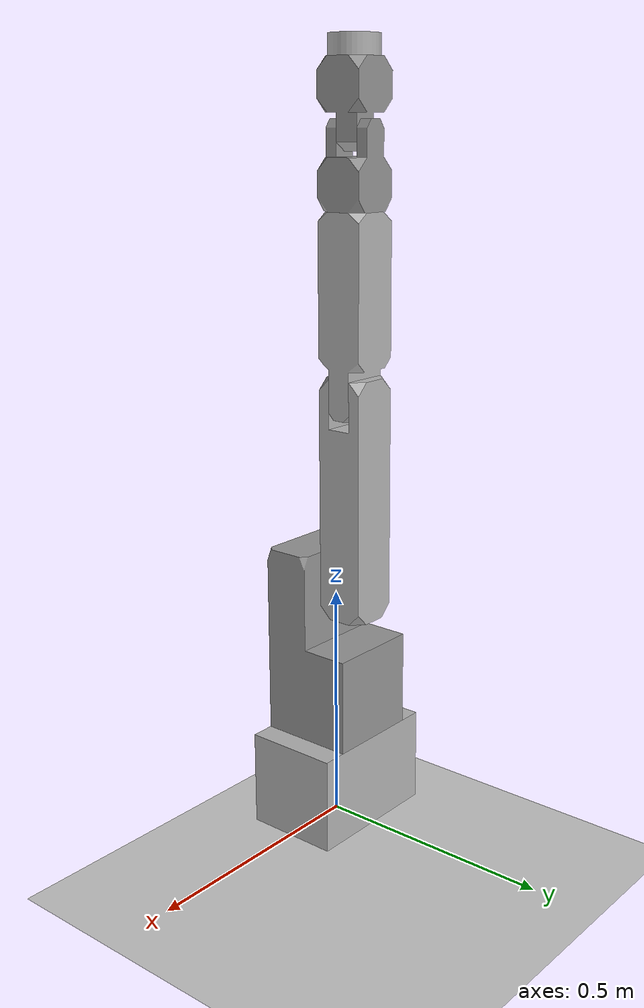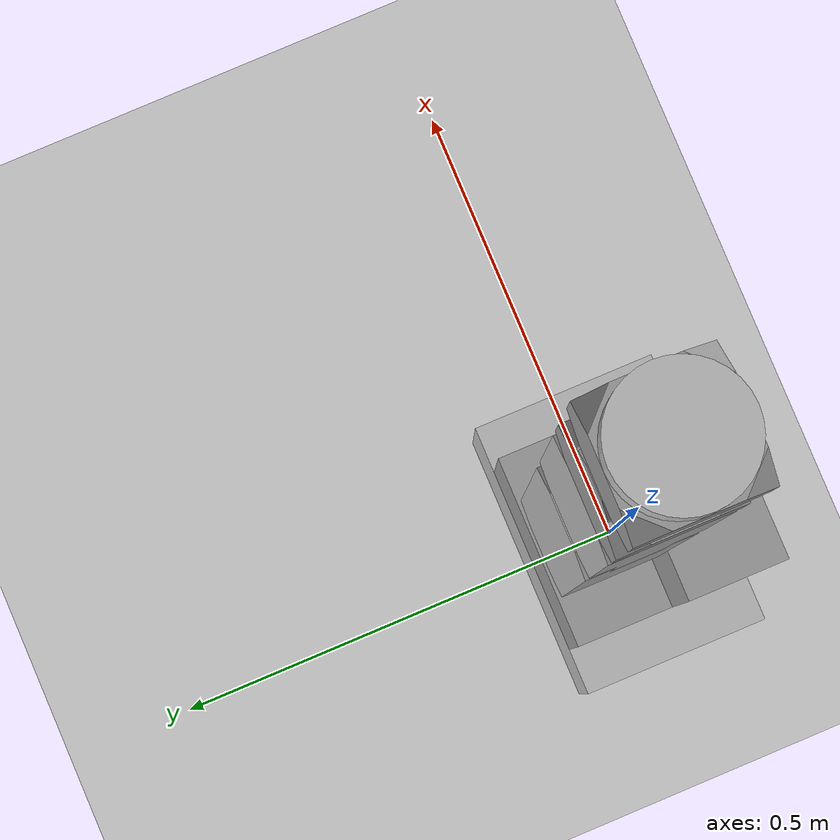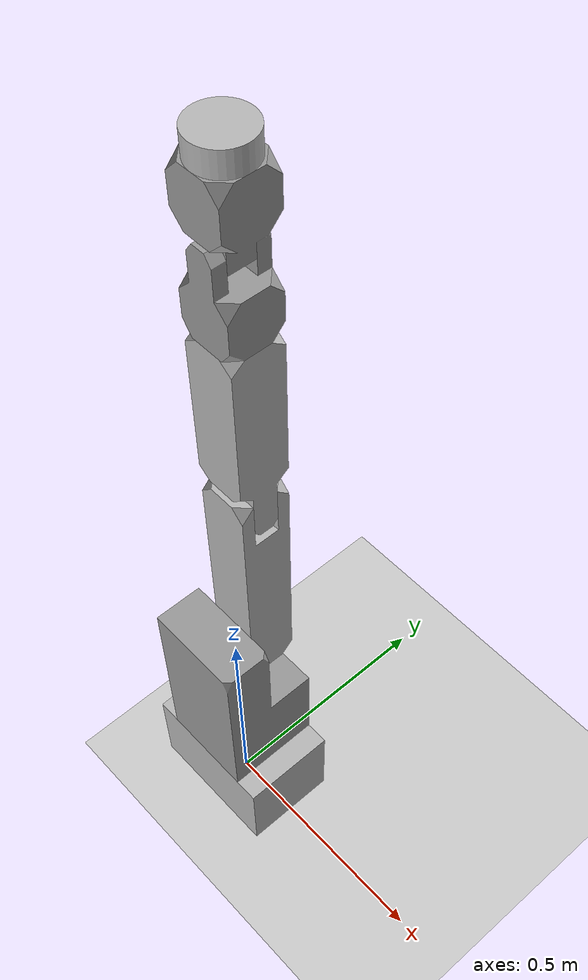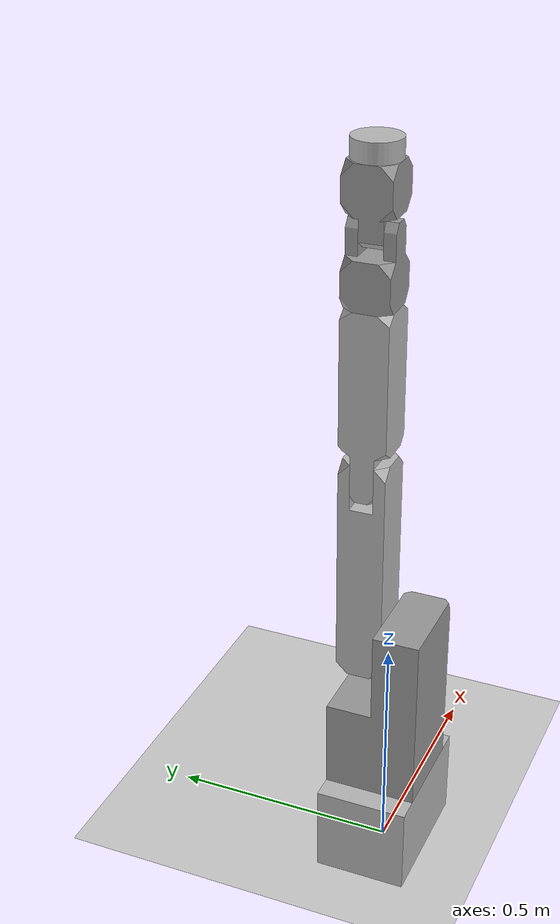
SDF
<?xml version="1.0" ?>
<sdf version="1.4">
	<world name="default">
		<include>
			<uri>model://ground_plane</uri>
		</include>

		<include>
			<uri>model://sun</uri>
		</include>

		<include>
			<uri>model://gz_mani</uri>
			<plugin name="gz_mani" filename="libgz_mani.so"/>
		</include>
	</world>
</sdf>

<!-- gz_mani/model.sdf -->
<!-- mesh -> pose -> joint -> collision -> joint.linit -->

<sdf version='1.5'>

	<model name="gz_mani">

		<link name='link0'>
			<inertial><mass>1000</mass></inertial>
			<pose>0 0 0.1 0 0 0</pose>

			<visual name='vis_link0'>
				<geometry>
					<mesh><uri>model://gz_mani/link0.dae</uri></mesh>
				</geometry>
			</visual>

			<collision name='col_link0'>
				<geometry>
					<box>
						<size>.2 .2 .1</size>
					</box>
				</geometry>
			</collision>
		</link>

		<link name="link1">
			<pose>0 0 0.3 0 0 0</pose>
			<self_collide>0</self_collide>

			<visual name="vis_link1">
				<geometry>
					<mesh><uri>model://gz_mani/link1.dae</uri></mesh>
				</geometry>
				<material>
					<script>
						<uri>file://media/materials/scripts/gazebo.material</uri>
						<name>Gazebo/Grey</name>
					</script>
				</material>
			</visual>

			<collision name="col_link1">
				<geometry>
					<box>
						<size>.0 .0 .0</size>
					</box>
				</geometry>
			</collision>

		</link>

		<link name="link2">
			<pose>0 0.05 0.66 0 0 0</pose>
			<self_collide>0</self_collide>

			<visual name="vis_link2">
				<geometry>
					<mesh><uri>model://gz_mani/link2.dae</uri></mesh>
				</geometry>
			</visual>

			<collision name="col_link2">
				<geometry>
					<box>
						<size>.0 .0 .0</size>
					</box>
				</geometry>
			</collision>
		</link>

		<link name="link3">
			<pose>0 0.05 1.13 0 0 0</pose>
			<self_collide>0</self_collide>

			<visual name="vis_link3">
				<geometry>
					<mesh><uri>model://gz_mani/link3.dae</uri></mesh>
				</geometry>
			</visual>

			<collision name="col_link3">
				<geometry>
					<box>
						<size>.0 .0 .0</size>
					</box>
				</geometry>
			</collision>
		</link>

		<link name="link4">
			<pose>0 0.05 1.33 0 0 0</pose>
			<self_collide>0</self_collide>

			<visual name="vis_link4">
				<geometry>
					<mesh><uri>model://gz_mani/link4.dae</uri></mesh>
				</geometry>
				<material>
					<script>
						<uri>file://media/materials/scripts/gazebo.material</uri>
						<name>Gazebo/Grey</name>
					</script>
				</material>
			</visual>

			<collision name="col_link4">
				<geometry>
					<box>
						<size>.0 .0 .0</size>
					</box>
				</geometry>
			</collision>
		</link>

		<link name="link5">
			<pose>0 0.05 1.51 0 0 0</pose>
			<self_collide>0</self_collide>

			<visual name="vis_link5">
				<geometry>
					<mesh><uri>model://gz_mani/link5.dae</uri></mesh>
				</geometry>
				<material>
					<script>
						<uri>file://media/materials/scripts/gazebo.material</uri>
						<name>Gazebo/Grey</name>
					</script>
				</material>
			</visual>

			<collision name="col_link5">
				<geometry>
					<box>
						<size>.0 .0 .0</size>
					</box>
				</geometry>
			</collision>
		</link>

		<link name="link6">
			<pose>0 0.05 1.58 0 0 0</pose>
			<self_collide>0</self_collide>

			<visual name="vis_link6">
				<geometry>
					<mesh><uri>model://gz_mani/link6.dae</uri></mesh>
				</geometry>
			</visual>

			<collision name="col_link6">
				<geometry>
					<box>
						<size>.0 .0 .0</size>
					</box>
				</geometry>
			</collision>
		</link>

		<joint type="revolute" name="joint0">
			<pose>0 0 0 0 0 0</pose>
			<parent>world</parent>
			<child>link0</child>
			<axis>
				<xyz>0 0 0</xyz>
			</axis>
		</joint>

		<joint type="revolute" name="joint1">
			<pose>0 0 0 0 0 0</pose>
			<parent>link0</parent>
			<child>link1</child>
			<axis>
				<xyz>0 0 1.0</xyz>
			</axis>
		</joint>

		<joint type="revolute" name="joint2">
			<pose>0 0 -0.13 0 0 0</pose>
			<parent>link1</parent>
			<child>link2</child>
			<axis>
				<xyz>0 1 0</xyz>
				<limit>
                    <lower>-1.57</lower>
					<upper>1.57</upper>
				</limit>
			</axis>
		</joint>

		<joint type="revolute" name="joint3">
			<pose>0 0 -0.21 0 0 0</pose>
			<parent>link2</parent>
			<child>link3</child>
			<axis>
				<xyz>0 1 0</xyz>
				<limit>
                    <lower>-1.57</lower>
					<upper>1.57</upper>
				</limit>
			</axis>
		</joint>

		<joint type="revolute" name="joint4">
			<pose>0 0 0 0 0 0</pose>
			<parent>link3</parent>
			<child>link4</child>
			<axis>
				<xyz>0 0 1</xyz>
			</axis>
		</joint>

		<joint type="revolute" name="joint5">
			<pose>0 0 -0.09 0 0 0</pose>
			<parent>link4</parent>
			<child>link5</child>
			<axis>
				<xyz>0 1 0</xyz>
				<limit>
                    <lower>-1.57</lower>
					<upper>1.57</upper>
				</limit>
			</axis>
		</joint>

		<joint type="revolute" name="joint6">
			<pose>0 0 0 0 0 0</pose>
			<parent>link5</parent>
			<child>link6</child>
			<axis>
				<xyz>0 0 1</xyz>
			</axis>
		</joint>

	</model>
</sdf>
